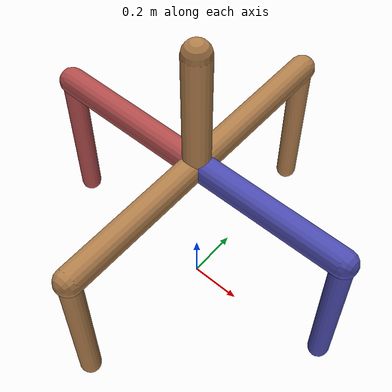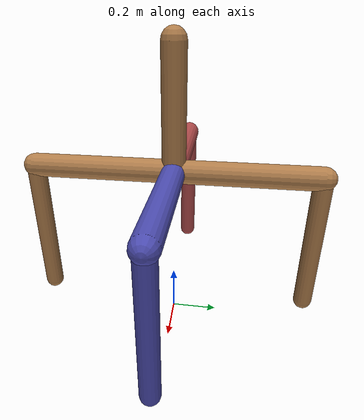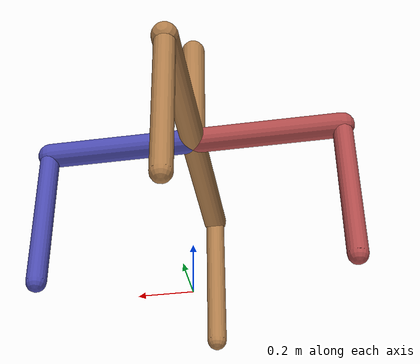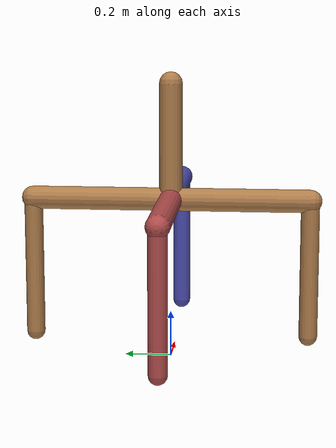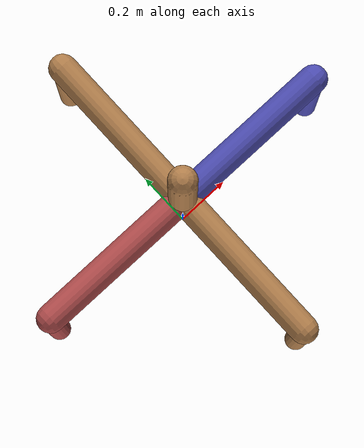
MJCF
<mujoco model="walker2d">
  <default>
    <joint limited="true" damping="0.5" armature="0.05"/>
    <geom friction="0.7" material="self" solref="0.02 1" solimp="0.9 0.95 0.001"/>
    <motor ctrllimited="true" ctrlrange="-1.0 1.0"/>
  </default>

  <asset>
    <texture type="skybox" builtin="gradient" rgb1=".4 .5 .6" rgb2="0 0 0" width="100" height="100"/>
    <material name="self" rgba=".7 .5 .3 1"/>
    <material name="limb_left" rgba=".7 .3 .3 1"/> <!-- Red leg -->
    <material name="limb_right" rgba=".3 .3 .7 1"/> <!-- Blue leg -->
  </asset>

  <worldbody>
    <light pos="0 0 2" mode="trackcom"/>

    <body name="torso">
      <joint name="root" type="free" armature="0"/>
      <geom name="torso_geom" type="capsule" fromto="0 0 1.2 0 0 0.7" size="0.05"/>

      <body name="thigh_right" pos="0 0 0">
        <joint name="thigh_joint_right" axis="0 1 0" pos="0 0 0.7" range="-45 45" type="hinge"/>
        <geom name="thigh_geom_right" type="capsule" fromto="0 0 0.7 0.6 0 0.7" size="0.05" material="limb_right"/>

        <body name="leg_right" pos="0.6 0 0">
          <joint name="leg_joint_right" axis="0 1 0" range="-60 60" type="hinge" pos="0 0 0.7"/>
          <geom name="leg_geom_right" type="capsule" fromto="0 0 0.7 0 0 0.1" size="0.04" material="limb_right"/>
        </body>
      </body>

      <body name="thigh_left" pos="0 0 0">
        <joint name="thigh_joint_left" axis="0 1 0" pos="0 0 0.7" range="-45 45" type="hinge"/>
        <geom name="thigh_geom_left" type="capsule" fromto="0 0 0.7 -0.6 0 0.7" size="0.05" material="limb_left"/>

        <body name="leg_left" pos="-0.6 0 0">
          <joint name="leg_joint_left" axis="0 1 0" range="-60 60" type="hinge" pos="0 0 0.7"/>
          <geom name="leg_geom_left" type="capsule" fromto="0 0 0.7 0 0 0.1" size="0.04" material="limb_left"/>
        </body>
      </body>

      <body name="thigh_up" pos="0 0 0">
        <joint name="thigh_joint_up" axis="1 0 0" pos="0 0 0.7" range="-45 45" type="hinge"/>
        <geom name="thigh_geom_up" type="capsule" fromto="0 0 0.7 0 0.6 0.7" size="0.05"/>

        <body name="leg_up" pos="0 0.6 0">
          <joint name="leg_joint_up" axis="1 0 0" range="-60 60" type="hinge" pos="0 0 0.7"/>
          <geom name="leg_geom_up" type="capsule" fromto="0 0 0.7 0 0 0.1" size="0.04"/>
        </body>
      </body>

      <body name="thigh_down" pos="0 0 0">
        <joint name="thigh_joint_down" axis="1 0 0" pos="0 0 0.7" range="-45 45" type="hinge"/>
        <geom name="thigh_geom_down" type="capsule" fromto="0 0 0.7 0 -0.6 0.7" size="0.05"/>

        <body name="leg_down" pos="0 -0.6 0">
          <joint name="leg_joint_down" axis="1 0 0" range="-60 60" type="hinge" pos="0 0 0.7"/>
          <geom name="leg_geom_down" type="capsule" fromto="0 0 0.7 0 0 0.1" size="0.04"/>
        </body>
      </body>

    </body>
  </worldbody>

  <actuator>
    <motor name="thigh_right" joint="thigh_joint_right" gear="100"/>
    <motor name="thigh_left" joint="thigh_joint_left" gear="100"/>
    <motor name="thigh_up" joint="thigh_joint_up" gear="100"/>
    <motor name="thigh_down" joint="thigh_joint_down" gear="100"/>
    <motor name="leg_right" joint="leg_joint_right" gear="100"/>
    <motor name="leg_left" joint="leg_joint_left" gear="100"/>
    <motor name="leg_up" joint="leg_joint_up" gear="100"/>
    <motor name="leg_down" joint="leg_joint_down" gear="100"/>
  </actuator>

</mujoco>
